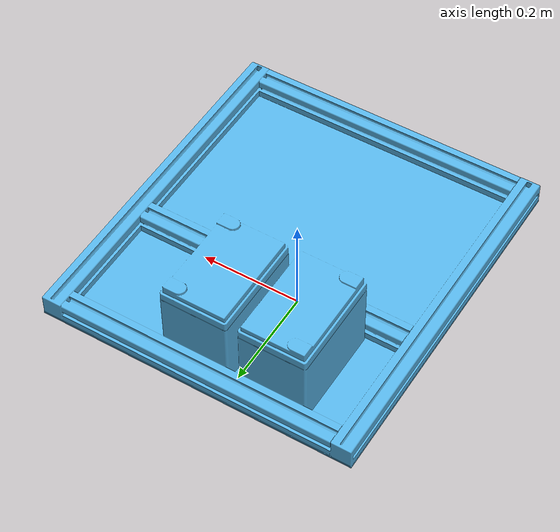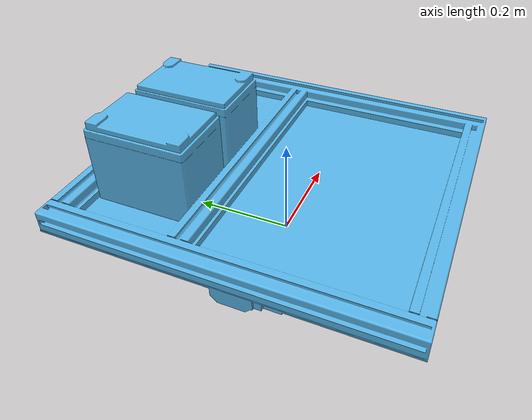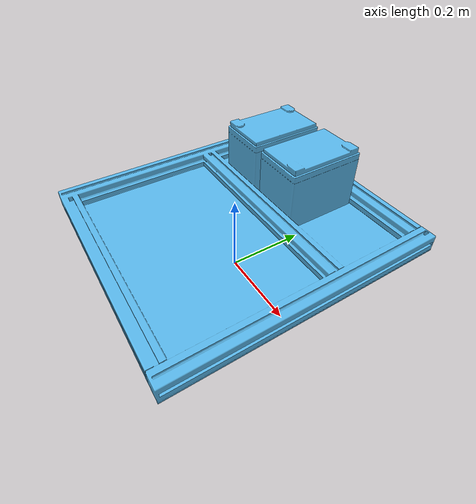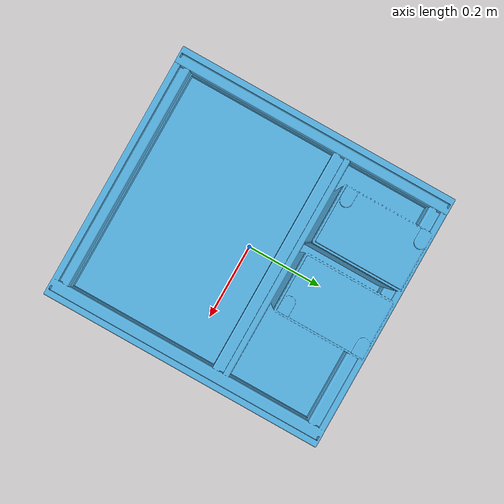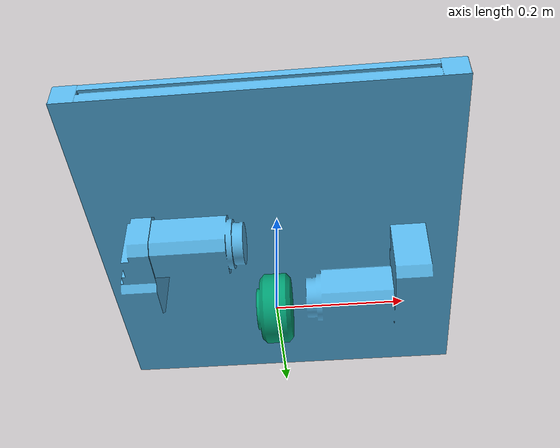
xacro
<?xml version="1.0"?>
<!-- Revolute-Revolute Manipulator -->
<robot name="awagv" xmlns:xacro="http://www.ros.org/wiki/xacro">

  <!-- Constants for robot dimensions -->
  <xacro:property name="PI" value="3.1415926535897931"/>
  <xacro:property name="RIGHT_ANGLE" value="1.570796327"/>

  <!-- Used for fixing robot to Gazebo 'base_link' -->
  <link name="base_link"/>

  <joint name="fixed" type="fixed">
    <parent link="base_link"/>
    <child link="body_link"/>
  </joint>

  <!-- ==================================================================body_link -->
  <link name="body_link">
    <visual>
      <origin xyz="0 0 0" rpy="0 0 0"/>
      <axis xyz="0 0 0"/>
      <geometry>
        <mesh filename="package://awagv_description/meshes/awagv.stl" scale="1 1 1"/>
      </geometry>
    </visual>
  </link>
  <!-- +++++++++++++++++++++++++++++++++++++++++++++++++++++++++++++++++joint_wheel_r -->
  <joint name="wheel_r_joint" type="continuous">
    <parent link="body_link"/>
    <child link="wheel_link_r"/>
    <origin xyz="0 0 0" rpy="0 0 ${-RIGHT_ANGLE}"/>
    <axis xyz="0 1 0"/>
    <dynamics damping="0.7"/>
  </joint>
  <!-- ==================================================================link_wheel -->
  <link name="wheel_link_r">
    <visual>
      <origin xyz="0 0 0" rpy="0 0 0"/>
      <geometry>
        <mesh filename="package://awagv_description/meshes/agvwheel.stl" scale="1 1 1"/>
      </geometry>
    </visual>
  </link>

</robot>
